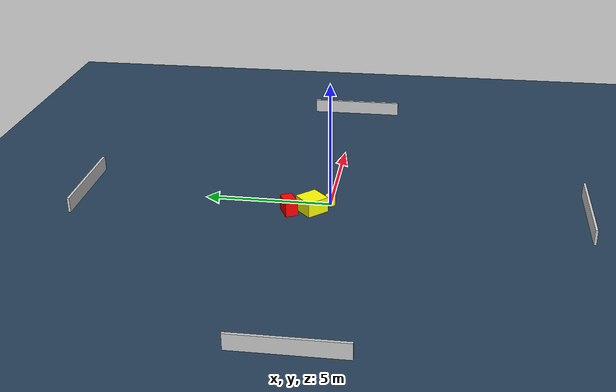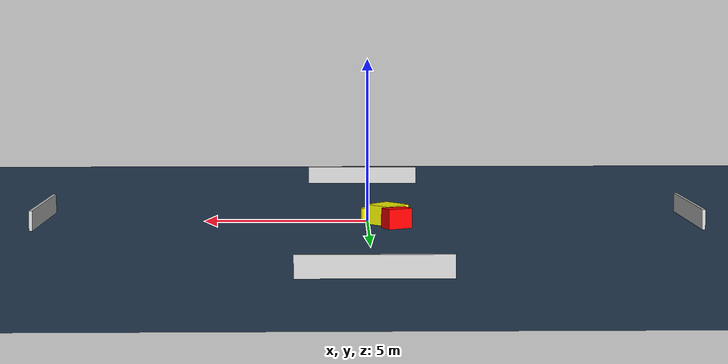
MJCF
<?xml version="1.0" ?>
<mujoco model="generated_environment">
  <option timestep="0.01" integrator="RK4" cone="elliptic"/>
  <default>
    <geom density="1"/>
  </default>
  <asset>
    <texture builtin="gradient" height="3072" name="skybox" rgb1="0.3 0.5 0.7" rgb2="0 0 0" type="skybox" width="512"/>
    <texture builtin="checker" height="300" name="groundplane" rgb1="0.2 0.3 0.4" rgb2="0.1 0.2 0.3" type="2d" width="300"/>
    <material name="groundplane" reflectance="0.2" texrepeat="5 5" texture="groundplane"/>
  </asset>
  <worldbody>
    <light dir="0 0 -1" directional="true" pos="0 0 1.5"/>
    <geom condim="3" friction="0.5 0.005 0.001" material="groundplane" name="floor" pos="0 0 0" size="0 0 0.05" type="plane"/>
    <body name="walls">
      <geom name="wall_1" condim="4" pos="-10.0 0.0 0.3" rgba="0.800000011920929 0.800000011920929 0.800000011920929 1.0" size="0.05 2.0 0.3" type="box"/>
      <geom name="wall_2" condim="4" pos="10.0 0.0 0.3" rgba="0.800000011920929 0.800000011920929 0.800000011920929 1.0" size="0.05 2.0 0.3" type="box"/>
      <geom name="wall_3" condim="4" pos="0.0 -10.0 0.3" rgba="0.800000011920929 0.800000011920929 0.800000011920929 1.0" size="2.0 0.05 0.3" type="box"/>
      <geom name="wall_4" condim="4" pos="0.0 10.0 0.3" rgba="0.800000011920929 0.800000011920929 0.800000011920929 1.0" size="2.0 0.05 0.3" type="box"/>
    </body>
    <body name="robot">
      <joint name="joint_x" type="slide" pos="0 0 0" axis="1 0 0"/>
      <joint name="joint_y" type="slide" pos="0 0 0" axis="0 1 0"/>
      <geom name="robot" type="cylinder" pos="0.0 0.0 0.2" size="0.2 0.2 0.0" mass="5.0" friction="1.0 0.005 0.0001" condim="4" rgba="1.0 1.0 0.0 1.0"/>
    </body>
    <body name="obstacle_1_movable">
      <geom name="obstacle_1_movable" condim="4" pos="-0.6029792520457643 0.6539861402998451 0.3" euler="0 0 313.4103578397189" friction="0.0 0.005 0.001" rgba="1.0 1.0 0.0 1.0" size="0.46362804263704327 0.4496047477269861 0.3" type="box" mass="0.1"/>
      <joint type="free"/>
    </body>
    <body name="obstacle_2_static">
      <geom name="obstacle_2_static" condim="4" pos="-0.857894143949696 1.5197056396517543 0.3" euler="0 0 26.365912050879523" friction="0.0 0.005 0.001" rgba="1.0 0.0 0.0 1.0" size="0.3928871401164987 0.24334265223962837 0.3" type="box"/>
    </body>
  </worldbody>
  <actuator>
    <motor name="actuator_x" joint="joint_x" gear="1" ctrlrange="-1 1"/>
    <motor name="actuator_y" joint="joint_y" gear="1" ctrlrange="-1 1"/>
  </actuator>
</mujoco>
